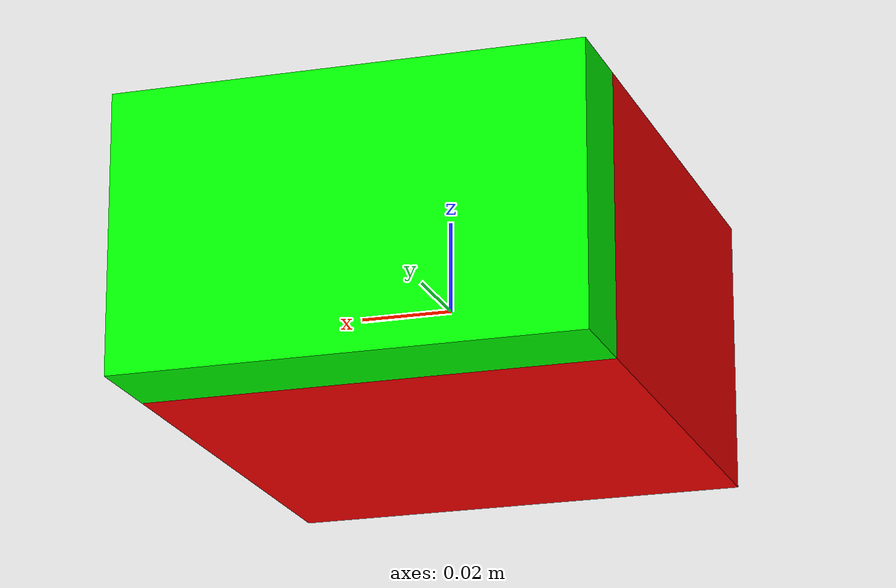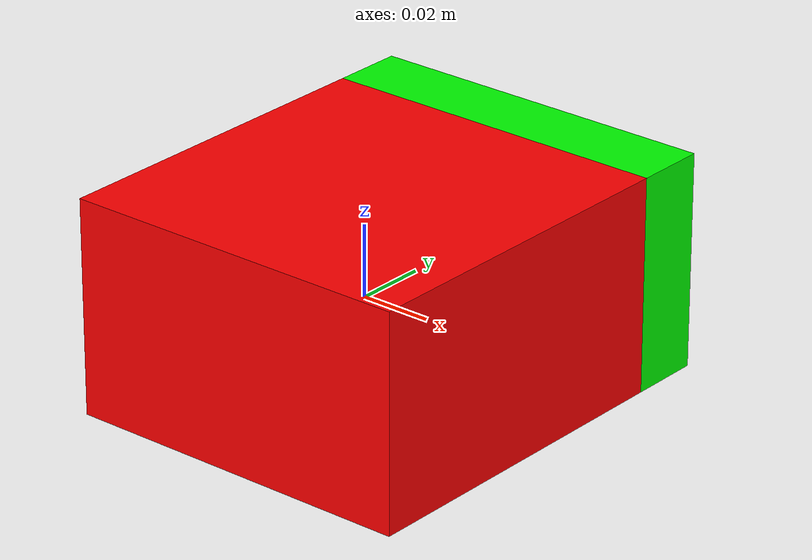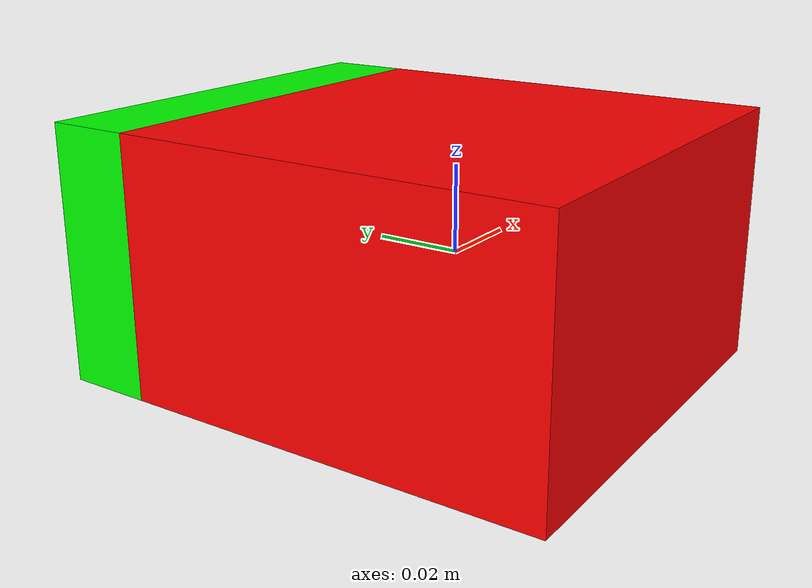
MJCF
<mujoco model="pushed_box">
    <worldbody>
        <body name="pushed_box" pos="0.0 0.0 0.0" quat="1 0 0 0">
             <geom name="pushed_box_a" pos="0 0 0.0" size="0.05 0.05 0.03" rgba="1 0 0 1.0" type="box" mass="0.03" friction="1 0.001 0.0001" priority="1"  />
            <geom name="pushed_box_b" pos="0.0 0.06 0" size="0.05 0.01 0.03" rgba="0 1 0 1.0" type="box" mass="0.03" friction="1 0.001 0.0001" priority="1"  />
            <joint name="pushed_box_joint" type="free"/>
        </body>
    </worldbody>
</mujoco>
